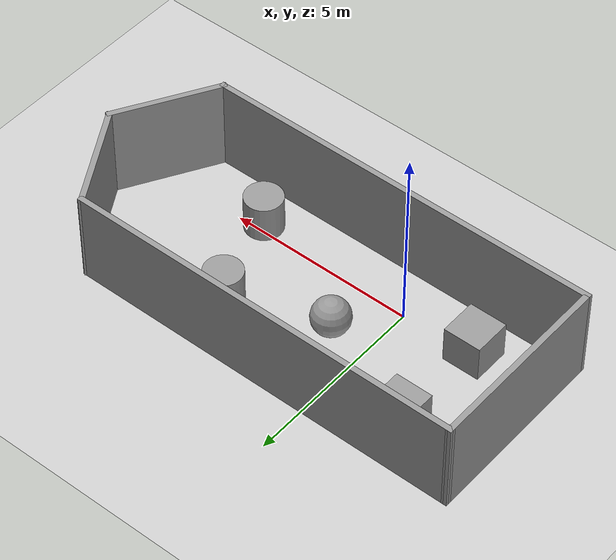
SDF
<sdf version="1.6">
 <world name="default">
  <light name="sun" type="directional">
   <pose>0 0 10 0 -0 0</pose>
   <diffuse>0.8 0.8 0.8 1</diffuse>
   <specular>0.2 0.2 0.2 1</specular>
   <attenuation>
    <range>1000</range>
    <constant>0.9</constant>
    <linear>0.01</linear>
    <quadratic>0.001</quadratic>
   </attenuation>
   <direction>-0.5 0.1 -0.9</direction>
  </light>
  <model name="ground_plane">
   <static>1</static>
   <link name="link">
    <collision name="collision">
     <geometry><plane><normal>0 0 1</normal><size>100 100</size></plane></geometry>
     <surface><friction><ode><mu>100</mu><mu2>50</mu2></ode></friction></surface>
    </collision>
    <visual name="visual">
     <cast_shadows>0</cast_shadows>
     <geometry><plane><normal>0 0 1</normal><size>100 100</size></plane></geometry>
     <material>
      <script><uri>file://media/materials/scripts/gazebo.material</uri><name>Gazebo/Grey</name></script>
     </material>
    </visual>
   </link>
  </model>
  <gravity>0 0 -9.8</gravity>
  <magnetic_field>6e-06 2.3e-05 -4.2e-05</magnetic_field>
  <atmosphere type="adiabatic"/>
  <physics name="default_physics" default="0" type="ode">
   <max_step_size>0.001</max_step_size>
   <real_time_factor>1</real_time_factor>
   <real_time_update_rate>1000</real_time_update_rate>
  </physics>
  <scene><ambient>0.4 0.4 0.4 1</ambient><background>0.7 0.7 0.7 1</background><shadows>1</shadows></scene>
  <spherical_coordinates>
   <surface_model>EARTH_WGS84</surface_model>
   <latitude_deg>0</latitude_deg>
   <longitude_deg>0</longitude_deg>
   <elevation>0</elevation>
   <heading_deg>0</heading_deg>
  </spherical_coordinates>
  <model name="enclosure">
   <pose>1.97499 1.18225 0 0 -0 0</pose>
   <link name="Wall_34">
    <collision name="Wall_34_Collision">
     <geometry><box><size>5 0.15 2.5</size></box></geometry>
     <pose>0 0 1.25 0 -0 0</pose>
    </collision>
    <visual name="Wall_34_Visual">
     <pose>0 0 1.25 0 -0 0</pose>
     <geometry><box><size>5 0.15 2.5</size></box></geometry>
     <material>
      <script><uri>file://media/materials/scripts/gazebo.material</uri><name>Gazebo/Grey</name></script>
      <ambient>1 1 1 1</ambient>
     </material>
     <meta><layer>0</layer></meta>
    </visual>
    <pose>-6.02618 0.056828 0 0 0 -1.5708</pose>
   </link>
   <link name="Wall_35">
    <collision name="Wall_35_Collision">
     <geometry><box><size>0.25 0.15 2.5</size></box></geometry>
     <pose>0 0 1.25 0 -0 0</pose>
    </collision>
    <visual name="Wall_35_Visual">
     <pose>0 0 1.25 0 -0 0</pose>
     <geometry><box><size>0.25 0.15 2.5</size></box></geometry>
     <material>
      <script><uri>file://media/materials/scripts/gazebo.material</uri><name>Gazebo/Grey</name></script>
      <ambient>1 1 1 1</ambient>
     </material>
     <meta><layer>0</layer></meta>
    </visual>
    <pose>-6.02618 -2.41817 0 0 0 -1.5708</pose>
   </link>
   <link name="Wall_36">
    <collision name="Wall_36_Collision">
     <geometry><box><size>10.75 0.15 2.5</size></box></geometry>
     <pose>0 0 1.25 0 -0 0</pose>
    </collision>
    <visual name="Wall_36_Visual">
     <pose>0 0 1.25 0 -0 0</pose>
     <geometry><box><size>10.75 0.15 2.5</size></box></geometry>
     <material>
      <script><uri>file://media/materials/scripts/gazebo.material</uri><name>Gazebo/Grey</name></script>
      <ambient>1 1 1 1</ambient>
     </material>
     <meta><layer>0</layer></meta>
    </visual>
    <pose>-0.726177 -2.46817 0 0 -0 0</pose>
   </link>
   <link name="Wall_37">
    <collision name="Wall_37_Collision">
     <geometry><box><size>3 0.15 2.5</size></box></geometry>
     <pose>0 0 1.25 0 -0 0</pose>
    </collision>
    <visual name="Wall_37_Visual">
     <pose>0 0 1.25 0 -0 0</pose>
     <geometry><box><size>3 0.15 2.5</size></box></geometry>
     <material>
      <script><uri>file://media/materials/scripts/gazebo.material</uri><name>Gazebo/Grey</name></script>
      <ambient>1 1 1 1</ambient>
     </material>
     <meta><layer>0</layer></meta>
    </visual>
    <pose>5.28632 -1.23409 0 0 -0 1.0472</pose>
   </link>
   <link name="Wall_38">
    <collision name="Wall_38_Collision">
     <geometry><box><size>3 0.15 2.5</size></box></geometry>
     <pose>0 0 1.25 0 -0 0</pose>
    </collision>
    <visual name="Wall_38_Visual">
     <pose>0 0 1.25 0 -0 0</pose>
     <geometry><box><size>3 0.15 2.5</size></box></geometry>
     <material>
      <script><uri>file://media/materials/scripts/gazebo.material</uri><name>Gazebo/Grey</name></script>
      <ambient>1 1 1 1</ambient>
     </material>
     <meta><layer>0</layer></meta>
    </visual>
    <pose>5.28632 1.23409 0 0 -0 2.0944</pose>
   </link>
   <link name="Wall_39">
    <collision name="Wall_39_Collision">
     <geometry><box><size>10.75 0.15 2.5</size></box></geometry>
     <pose>0 0 1.25 0 -0 0</pose>
    </collision>
    <visual name="Wall_39_Visual">
     <pose>0 0 1.25 0 -0 0</pose>
     <geometry><box><size>10.75 0.15 2.5</size></box></geometry>
     <material>
      <script><uri>file://media/materials/scripts/gazebo.material</uri><name>Gazebo/Grey</name></script>
      <ambient>1 1 1 1</ambient>
     </material>
     <meta><layer>0</layer></meta>
    </visual>
    <pose>-0.726177 2.475 0 0 -0 3.1403</pose>
   </link>
   <static>1</static>
  </model>
  <model name="unit_box">
   <pose>-1.96598 -0.07138 0.499995 0 1e-05 0</pose>
   <link name="link">
    <inertial>
     <mass>1</mass>
     <inertia>
      <ixx>0.166667</ixx>
      <ixy>0</ixy>
      <ixz>0</ixz>
      <iyy>0.166667</iyy>
      <iyz>0</iyz>
      <izz>0.166667</izz>
     </inertia>
    </inertial>
    <collision name="collision"><geometry><box><size>1 1 1</size></box></geometry></collision>
    <visual name="visual">
     <geometry><box><size>1 1 1</size></box></geometry>
     <material>
      <script><name>Gazebo/Grey</name><uri>file://media/materials/scripts/gazebo.material</uri></script>
     </material>
    </visual>
   </link>
  </model>
  <model name="unit_box_0">
   <pose>-1.96559 2.64468 0.499995 -1e-05 0 0</pose>
   <link name="link">
    <inertial>
     <mass>1</mass>
     <inertia>
      <ixx>0.166667</ixx>
      <ixy>0</ixy>
      <ixz>0</ixz>
      <iyy>0.166667</iyy>
      <iyz>0</iyz>
      <izz>0.166667</izz>
     </inertia>
    </inertial>
    <collision name="collision"><geometry><box><size>1 1 1</size></box></geometry></collision>
    <visual name="visual">
     <geometry><box><size>1 1 1</size></box></geometry>
     <material>
      <script><name>Gazebo/Grey</name><uri>file://media/materials/scripts/gazebo.material</uri></script>
     </material>
    </visual>
   </link>
  </model>
  <model name="unit_sphere">
   <pose>1.02168 1.40632 0.5 0 -0 0</pose>
   <link name="link">
    <inertial>
     <mass>1</mass>
     <inertia><ixx>0.1</ixx><ixy>0</ixy><ixz>0</ixz><iyy>0.1</iyy><iyz>0</iyz><izz>0.1</izz></inertia>
    </inertial>
    <collision name="collision"><geometry><sphere><radius>0.5</radius></sphere></geometry></collision>
    <visual name="visual">
     <geometry><sphere><radius>0.5</radius></sphere></geometry>
     <material>
      <script><name>Gazebo/Grey</name><uri>file://media/materials/scripts/gazebo.material</uri></script>
     </material>
    </visual>
   </link>
  </model>
  <model name="unit_cylinder">
   <pose>4.38037 -0.175856 0.499993 -3e-06 -4e-06 -0</pose>
   <link name="link">
    <inertial>
     <mass>1</mass>
     <inertia><ixx>0.145833</ixx><ixy>0</ixy><ixz>0</ixz><iyy>0.145833</iyy><iyz>0</iyz><izz>0.125</izz></inertia>
    </inertial>
    <collision name="collision">
     <geometry><cylinder><radius>0.5</radius><length>1</length></cylinder></geometry>
    </collision>
    <visual name="visual">
     <geometry><cylinder><radius>0.5</radius><length>1</length></cylinder></geometry>
     <material>
      <script><name>Gazebo/Grey</name><uri>file://media/materials/scripts/gazebo.material</uri></script>
     </material>
    </visual>
   </link>
  </model>
  <model name="unit_cylinder_0">
   <pose>3.54723 2.24206 0.499997 3e-06 4e-06 -0</pose>
   <link name="link">
    <inertial>
     <mass>1</mass>
     <inertia><ixx>0.145833</ixx><ixy>0</ixy><ixz>0</ixz><iyy>0.145833</iyy><iyz>0</iyz><izz>0.125</izz></inertia>
    </inertial>
    <collision name="collision">
     <geometry><cylinder><radius>0.5</radius><length>1</length></cylinder></geometry>
    </collision>
    <visual name="visual">
     <geometry><cylinder><radius>0.5</radius><length>1</length></cylinder></geometry>
     <material>
      <script><name>Gazebo/Grey</name><uri>file://media/materials/scripts/gazebo.material</uri></script>
     </material>
    </visual>
   </link>
  </model>
 </world>
</sdf>
